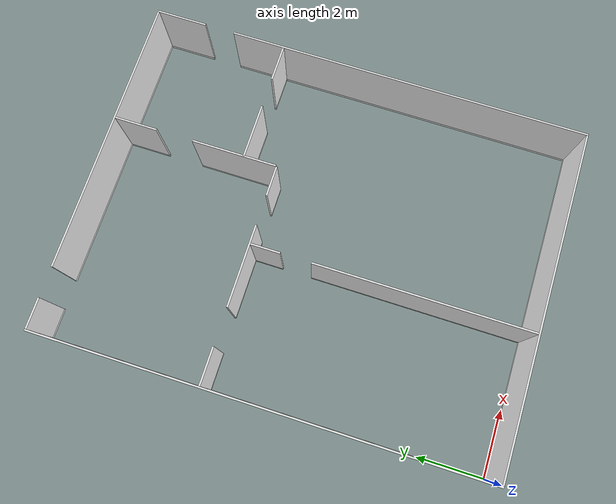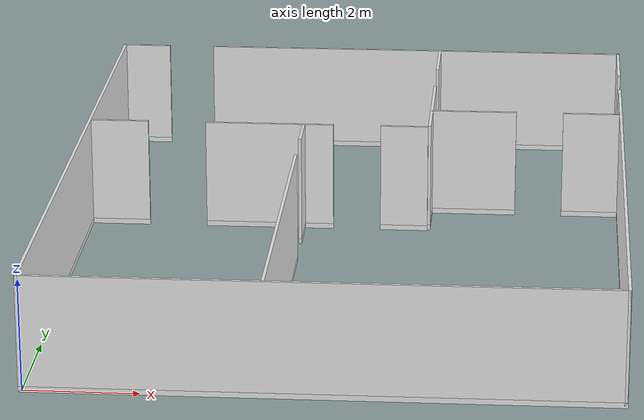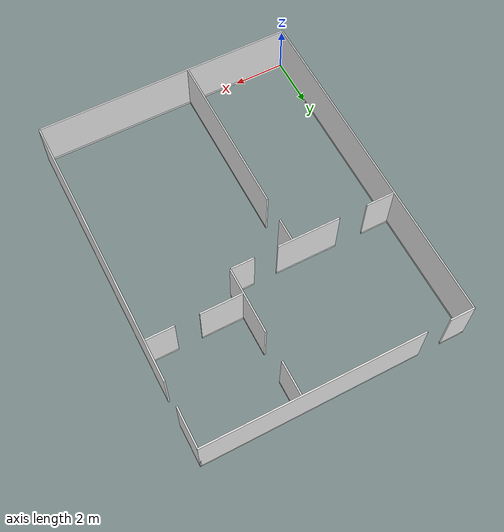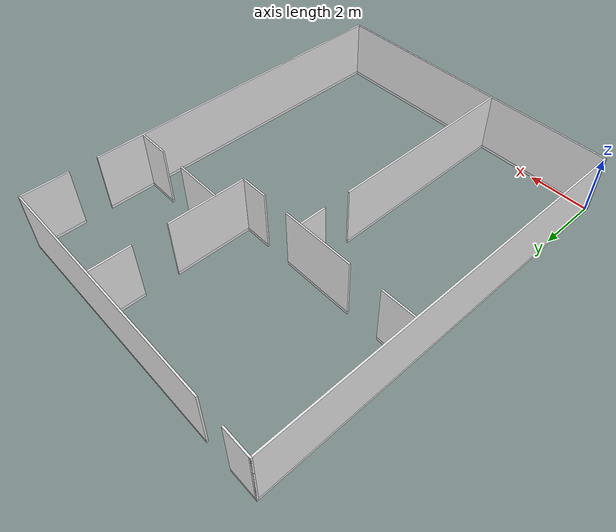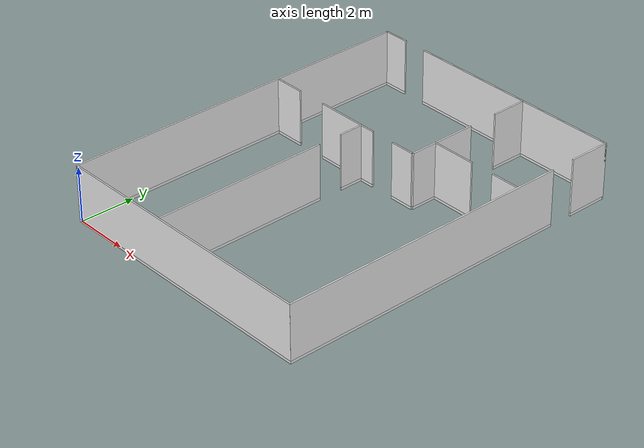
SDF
<sdf version="1.6">
 <world name="apartment">
  <model name="outside_wall">
   <link name="link">
    <inertial>
     <mass>50</mass>
     <inertia><ixx>1</ixx><ixy>0</ixy><ixz>0</ixz><iyy>1</iyy><iyz>0</iyz><izz>1</izz></inertia>
    </inertial>
    <visual name="x05y01_08_bottom_frame">
     <pose>4.075 3.215 0.05 0 -0 0</pose>
     <geometry><box><size>0.055 6.43 0.1</size></box></geometry>
     <material>
      <script><uri>model://base_materials/color/scripts</uri><name>hsr_color/white</name></script>
     </material>
    </visual>
    <collision name="x05y01_08_collision_bottom_frame">
     <pose>4.075 3.215 0.05 0 -0 0</pose>
     <geometry><box><size>0.055 6.43 0.1</size></box></geometry>
    </collision>
    <visual name="x05y01_08_wall">
     <pose>4.075 3.215 1.095 0 -0 0</pose>
     <geometry><box><size>0.055 6.43 1.99</size></box></geometry>
     <material>
      <script>
       <uri>model://base_materials/wall/scripts</uri>
       <uri>model://base_materials/wall/textures</uri>
       <name>wall/white_noise</name>
      </script>
     </material>
    </visual>
    <collision name="x05y01_08_collision_wall">
     <pose>4.075 3.215 1.095 0 -0 0</pose>
     <geometry><box><size>0.055 6.43 1.99</size></box></geometry>
    </collision>
    <visual name="x05y10_bottom_frame">
     <pose>4.075 7.78 0.05 0 -0 0</pose>
     <geometry><box><size>0.055 0.9 0.1</size></box></geometry>
     <material>
      <script><uri>model://base_materials/color/scripts</uri><name>hsr_color/white</name></script>
     </material>
    </visual>
    <collision name="x05y10_collision_bottom_frame">
     <pose>4.075 7.78 0.05 0 -0 0</pose>
     <geometry><box><size>0.055 0.9 0.1</size></box></geometry>
    </collision>
    <visual name="x05y10_wall">
     <pose>4.075 7.78 1.095 0 -0 0</pose>
     <geometry><box><size>0.055 0.9 1.99</size></box></geometry>
     <material>
      <script>
       <uri>model://base_materials/wall/scripts</uri>
       <uri>model://base_materials/wall/textures</uri>
       <name>wall/white_noise</name>
      </script>
     </material>
    </visual>
    <collision name="x05y10_collision_wall">
     <pose>4.075 7.78 1.095 0 -0 0</pose>
     <geometry><box><size>0.055 0.9 1.99</size></box></geometry>
    </collision>
    <visual name="x01_02_y09_bottom_frame">
     <pose>0.55 8.23 0.05 0 -0 1.5708</pose>
     <geometry><box><size>0.055 1.1 0.1</size></box></geometry>
     <material>
      <script><uri>model://base_materials/color/scripts</uri><name>hsr_color/white</name></script>
     </material>
    </visual>
    <collision name="x01_02_y09_collision_bottom_frame">
     <pose>0.55 8.23 0.05 0 -0 1.5708</pose>
     <geometry><box><size>0.055 1.1 0.1</size></box></geometry>
    </collision>
    <visual name="x01_02_y09_wall">
     <pose>0.55 8.23 1.095 0 -0 1.5708</pose>
     <geometry><box><size>0.055 1.1 1.99</size></box></geometry>
     <material>
      <script>
       <uri>model://base_materials/wall/scripts</uri>
       <uri>model://base_materials/wall/textures</uri>
       <name>wall/white_noise</name>
      </script>
     </material>
    </visual>
    <collision name="x01_02_y09_collision_wall">
     <pose>0.55 8.23 1.095 0 -0 1.5708</pose>
     <geometry><box><size>0.055 1.1 1.99</size></box></geometry>
    </collision>
    <visual name="x04_07_y09_bottom_frame">
     <pose>3.42 8.23 0.05 0 -0 1.5708</pose>
     <geometry><box><size>0.055 2.44 0.1</size></box></geometry>
     <material>
      <script><uri>model://base_materials/color/scripts</uri><name>hsr_color/white</name></script>
     </material>
    </visual>
    <collision name="x04_07_y09_collision_bottom_frame">
     <pose>3.42 8.23 0.05 0 -0 1.5708</pose>
     <geometry><box><size>0.055 2.44 0.1</size></box></geometry>
    </collision>
    <visual name="x04_07_y09_wall">
     <pose>3.42 8.23 1.095 0 -0 1.5708</pose>
     <geometry><box><size>0.055 2.44 1.99</size></box></geometry>
     <material>
      <script>
       <uri>model://base_materials/wall/scripts</uri>
       <uri>model://base_materials/wall/textures</uri>
       <name>wall/white_noise</name>
      </script>
     </material>
    </visual>
    <collision name="x04_07_y09_collision_wall">
     <pose>3.42 8.23 1.095 0 -0 1.5708</pose>
     <geometry><box><size>0.055 2.44 1.99</size></box></geometry>
    </collision>
    <visual name="x08y10a_bottom_frame">
     <pose>5.9925 8.23 0.05 0 -0 1.5708</pose>
     <geometry><box><size>0.055 0.9 0.1</size></box></geometry>
     <material>
      <script><uri>model://base_materials/color/scripts</uri><name>hsr_color/white</name></script>
     </material>
    </visual>
    <collision name="x08y10a_collision_bottom_frame">
     <pose>5.9925 8.23 0.05 0 -0 1.5708</pose>
     <geometry><box><size>0.055 0.9 0.1</size></box></geometry>
    </collision>
    <visual name="x08y10a_wall">
     <pose>5.9925 8.23 1.095 0 -0 1.5708</pose>
     <geometry><box><size>0.055 0.9 1.99</size></box></geometry>
     <material>
      <script>
       <uri>model://base_materials/wall/scripts</uri>
       <uri>model://base_materials/wall/textures</uri>
       <name>wall/white_noise</name>
      </script>
     </material>
    </visual>
    <collision name="x08y10a_collision_wall">
     <pose>5.9925 8.23 1.095 0 -0 1.5708</pose>
     <geometry><box><size>0.055 0.9 1.99</size></box></geometry>
    </collision>
    <visual name="x08y10a_bottom_frame">
     <pose>5.9925 8.23 0.05 0 -0 1.5708</pose>
     <geometry><box><size>0.055 0.9 0.1</size></box></geometry>
     <material>
      <script><uri>model://base_materials/color/scripts</uri><name>hsr_color/white</name></script>
     </material>
    </visual>
    <collision name="x08y10a_collision_bottom_frame">
     <pose>5.9925 8.23 0.05 0 -0 1.5708</pose>
     <geometry><box><size>0.055 0.9 0.1</size></box></geometry>
    </collision>
    <visual name="x08y10a_wall">
     <pose>5.9925 8.23 1.095 0 -0 1.5708</pose>
     <geometry><box><size>0.055 0.9 1.99</size></box></geometry>
     <material>
      <script>
       <uri>model://base_materials/wall/scripts</uri>
       <uri>model://base_materials/wall/textures</uri>
       <name>wall/white_noise</name>
      </script>
     </material>
    </visual>
    <collision name="x08y10a_collision_wall">
     <pose>5.9925 8.23 1.095 0 -0 1.5708</pose>
     <geometry><box><size>0.055 0.9 1.99</size></box></geometry>
    </collision>
    <visual name="x08y14_15_bottom_frame">
     <pose>6.47 12.54 0.05 0 -0 0</pose>
     <geometry><box><size>0.055 1.28 0.1</size></box></geometry>
     <material>
      <script><uri>model://base_materials/color/scripts</uri><name>hsr_color/white</name></script>
     </material>
    </visual>
    <collision name="x08y14_15_collision_bottom_frame">
     <pose>6.47 12.54 0.05 0 -0 0</pose>
     <geometry><box><size>0.055 1.28 0.1</size></box></geometry>
    </collision>
    <visual name="x08y14_15_wall">
     <pose>6.47 12.54 1.095 0 -0 0</pose>
     <geometry><box><size>0.055 1.28 1.99</size></box></geometry>
     <material>
      <script>
       <uri>model://base_materials/wall/scripts</uri>
       <uri>model://base_materials/wall/textures</uri>
       <name>wall/white_noise</name>
      </script>
     </material>
    </visual>
    <collision name="x08y14_15_collision_wall">
     <pose>6.47 12.54 1.095 0 -0 0</pose>
     <geometry><box><size>0.055 1.28 1.99</size></box></geometry>
    </collision>
    <visual name="x08y10b_12_bottom_frame">
     <pose>6.47 9.52875 0.05 0 -0 0</pose>
     <geometry><box><size>0.055 2.5425 0.1</size></box></geometry>
     <material>
      <script><uri>model://base_materials/color/scripts</uri><name>hsr_color/white</name></script>
     </material>
    </visual>
    <collision name="x08y10b_12_collision_bottom_frame">
     <pose>6.47 9.52875 0.05 0 -0 0</pose>
     <geometry><box><size>0.055 2.5425 0.1</size></box></geometry>
    </collision>
    <visual name="x08y10b_12_wall">
     <pose>6.47 9.52875 1.095 0 -0 0</pose>
     <geometry><box><size>0.055 2.5425 1.99</size></box></geometry>
     <material>
      <script>
       <uri>model://base_materials/wall/scripts</uri>
       <uri>model://base_materials/wall/textures</uri>
       <name>wall/white_noise</name>
      </script>
     </material>
    </visual>
    <collision name="x08y10b_12_collision_wall">
     <pose>6.47 9.52875 1.095 0 -0 0</pose>
     <geometry><box><size>0.055 2.5425 1.99</size></box></geometry>
    </collision>
    <visual name="x08_09y11b_bottom_frame">
     <pose>7.284 9.23 0.05 0 -0 1.5708</pose>
     <geometry><box><size>0.055 1.632 0.1</size></box></geometry>
     <material>
      <script><uri>model://base_materials/color/scripts</uri><name>hsr_color/white</name></script>
     </material>
    </visual>
    <collision name="x08_09y11b_collision_bottom_frame">
     <pose>7.284 9.23 0.05 0 -0 1.5708</pose>
     <geometry><box><size>0.055 1.632 0.1</size></box></geometry>
    </collision>
    <visual name="x08_09y11b_wall">
     <pose>7.284 9.23 1.095 0 -0 1.5708</pose>
     <geometry><box><size>0.055 1.632 1.99</size></box></geometry>
     <material>
      <script>
       <uri>model://base_materials/wall/scripts</uri>
       <uri>model://base_materials/wall/textures</uri>
       <name>wall/white_noise</name>
      </script>
     </material>
    </visual>
    <collision name="x08_09y11b_collision_wall">
     <pose>7.284 9.23 1.095 0 -0 1.5708</pose>
     <geometry><box><size>0.055 1.632 1.99</size></box></geometry>
    </collision>
    <visual name="x11_12y11_bottom_frame">
     <pose>9.5375 9.23 0.05 0 -0 1.5708</pose>
     <geometry><box><size>0.055 1.075 0.1</size></box></geometry>
     <material>
      <script><uri>model://base_materials/color/scripts</uri><name>hsr_color/white</name></script>
     </material>
    </visual>
    <collision name="x11_12y11_collision_bottom_frame">
     <pose>9.5375 9.23 0.05 0 -0 1.5708</pose>
     <geometry><box><size>0.055 1.075 0.1</size></box></geometry>
    </collision>
    <visual name="x11_12y11_wall">
     <pose>9.5375 9.23 1.095 0 -0 1.5708</pose>
     <geometry><box><size>0.055 1.075 1.99</size></box></geometry>
     <material>
      <script>
       <uri>model://base_materials/wall/scripts</uri>
       <uri>model://base_materials/wall/textures</uri>
       <name>wall/white_noise</name>
      </script>
     </material>
    </visual>
    <collision name="x11_12y11_collision_wall">
     <pose>9.5375 9.23 1.095 0 -0 1.5708</pose>
     <geometry><box><size>0.055 1.075 1.99</size></box></geometry>
    </collision>
    <velocity_decay><linear>0</linear><angular>0</angular></velocity_decay>
   </link>
   <static>1</static>
  </model>
  <model name="inside_wall">
   <link name="link">
    <inertial>
     <mass>50</mass>
     <inertia><ixx>1</ixx><ixy>0</ixy><ixz>0</ixz><iyy>1</iyy><iyz>0</iyz><izz>1</izz></inertia>
    </inertial>
    <visual name="x00_13y00_bottom_frame">
     <pose>5.0375 -0.0275 0.05 0 -0 0</pose>
     <geometry><box><size>10.185 0.055 0.1</size></box></geometry>
     <material>
      <script><uri>model://base_materials/color/scripts</uri><name>hsr_color/white</name></script>
     </material>
    </visual>
    <collision name="x00_13y00_collision_bottom_frame">
     <pose>5.0375 -0.0275 0.05 0 -0 0</pose>
     <geometry><box><size>10.185 0.055 0.1</size></box></geometry>
    </collision>
    <visual name="wall_x00_13y00">
     <pose>5.0375 -0.0275 1.095 0 -0 0</pose>
     <geometry><box><size>10.185 0.055 1.99</size></box></geometry>
     <material>
      <script>
       <uri>model://base_materials/wall/scripts</uri>
       <uri>model://base_materials/wall/textures</uri>
       <name>wall/white_noise</name>
      </script>
     </material>
    </visual>
    <collision name="wall_x00_13y00">
     <pose>5.0375 -0.002 1.095 0 -0 0</pose>
     <geometry><box><size>10.08 0.055 1.99</size></box></geometry>
    </collision>
    <visual name="x00y00_15_bottom_frame">
     <pose>-0.0275 6.59 0.05 0 -0 0</pose>
     <geometry><box><size>0.055 13.29 0.1</size></box></geometry>
     <material>
      <script><uri>model://base_materials/color/scripts</uri><name>hsr_color/white</name></script>
     </material>
    </visual>
    <collision name="x00y00_15_collision_bottom_frame">
     <pose>-0.0275 6.59 0.05 0 -0 0</pose>
     <geometry><box><size>0.055 13.29 0.1</size></box></geometry>
    </collision>
    <visual name="wall_x00y00_15">
     <pose>-0.0275 6.59 1.095 0 -0 0</pose>
     <geometry><box><size>0.055 13.29 1.99</size></box></geometry>
     <material>
      <script>
       <uri>model://base_materials/wall/scripts</uri>
       <uri>model://base_materials/wall/textures</uri>
       <name>wall/white_noise</name>
      </script>
     </material>
    </visual>
    <collision name="wall_x00y00_x00y15">
     <pose>-0.002 6.59 1.095 0 -0 0</pose>
     <geometry><box><size>0.002 13.29 1.99</size></box></geometry>
    </collision>
    <visual name="x13y00_12_bottom_frame">
     <pose>10.1025 5.3725 0.05 0 -0 0</pose>
     <geometry><box><size>0.055 10.855 0.1</size></box></geometry>
     <material>
      <script><uri>model://base_materials/color/scripts</uri><name>hsr_color/white</name></script>
     </material>
    </visual>
    <collision name="x13y00_12_collision_bottom_frame">
     <pose>10.1025 5.3725 0.05 0 -0 0</pose>
     <geometry><box><size>0.055 10.855 0.1</size></box></geometry>
    </collision>
    <visual name="wall_x13y00_12">
     <pose>10.1025 5.3725 1.095 0 -0 0</pose>
     <geometry><box><size>0.055 10.855 1.99</size></box></geometry>
     <material>
      <script>
       <uri>model://base_materials/wall/scripts</uri>
       <uri>model://base_materials/wall/textures</uri>
       <name>wall/white_noise</name>
      </script>
     </material>
    </visual>
    <collision name="wall_x13y00_12">
     <pose>10.1025 5.3725 1.095 0 -0 0</pose>
     <geometry><box><size>0.055 10.855 1.99</size></box></geometry>
    </collision>
    <visual name="x13y14_16_bottom_frame">
     <pose>10.1025 12.4675 0.05 0 -0 0</pose>
     <geometry><box><size>0.055 1.535 0.1</size></box></geometry>
     <material>
      <script><uri>model://base_materials/color/scripts</uri><name>hsr_color/white</name></script>
     </material>
    </visual>
    <collision name="x13y14_16_collision_bottom_frame">
     <pose>10.1025 12.4675 0.05 0 -0 0</pose>
     <geometry><box><size>0.055 1.535 0.1</size></box></geometry>
    </collision>
    <visual name="wall_x13y14_x13y16">
     <pose>10.1025 12.4675 1.095 0 -0 0</pose>
     <geometry><box><size>0.055 1.535 1.99</size></box></geometry>
     <material>
      <script>
       <uri>model://base_materials/wall/scripts</uri>
       <uri>model://base_materials/wall/textures</uri>
       <name>wall/white_noise</name>
      </script>
     </material>
    </visual>
    <collision name="wall_x13y14_x13y16">
     <pose>10.1025 12.4675 1.095 0 -0 0</pose>
     <geometry><box><size>0.055 1.535 1.99</size></box></geometry>
    </collision>
    <visual name="x00_01y16_bottom_frame">
     <pose>0.4225 13.2075 0.05 0 -0 0</pose>
     <geometry><box><size>0.955 0.055 0.1</size></box></geometry>
     <material>
      <script><uri>model://base_materials/color/scripts</uri><name>hsr_color/white</name></script>
     </material>
    </visual>
    <collision name="x00_01y16_collision_bottom_frame">
     <pose>0.4225 13.2075 0.05 0 -0 0</pose>
     <geometry><box><size>0.955 0.055 0.1</size></box></geometry>
    </collision>
    <visual name="wall_x00_01y16">
     <pose>0.4225 13.2075 1.095 0 -0 0</pose>
     <geometry><box><size>0.955 0.055 1.99</size></box></geometry>
     <material>
      <script>
       <uri>model://base_materials/wall/scripts</uri>
       <uri>model://base_materials/wall/textures</uri>
       <name>wall/white_noise</name>
      </script>
     </material>
    </visual>
    <collision name="wall_x00_x01y16">
     <pose>0.4225 13.2075 1.095 0 -0 0</pose>
     <geometry><box><size>0.955 0.055 1.99</size></box></geometry>
    </collision>
    <visual name="x03_13y16_bottom_frame">
     <pose>5.965 13.2075 0.05 0 -0 0</pose>
     <geometry><box><size>8.33 0.05 0.1</size></box></geometry>
     <material>
      <script><uri>model://base_materials/color/scripts</uri><name>hsr_color/white</name></script>
     </material>
    </visual>
    <collision name="x03_13y16_collision_bottom_frame">
     <pose>5.965 13.2075 0.05 0 -0 0</pose>
     <geometry><box><size>8.33 0.05 0.1</size></box></geometry>
    </collision>
    <visual name="wall_x03_13y16">
     <pose>5.965 13.2075 1.095 0 -0 0</pose>
     <geometry><box><size>8.33 0.055 1.99</size></box></geometry>
     <material>
      <script>
       <uri>model://base_materials/wall/scripts</uri>
       <uri>model://base_materials/wall/textures</uri>
       <name>wall/white_noise</name>
      </script>
     </material>
    </visual>
    <collision name="wall_x03_13y16">
     <pose>5.965 13.2075 1.095 0 -0 0</pose>
     <geometry><box><size>8.33 0.055 1.99</size></box></geometry>
    </collision>
    <velocity_decay><linear>0</linear><angular>0</angular></velocity_decay>
   </link>
   <static>1</static>
  </model>
 </world>
</sdf>
